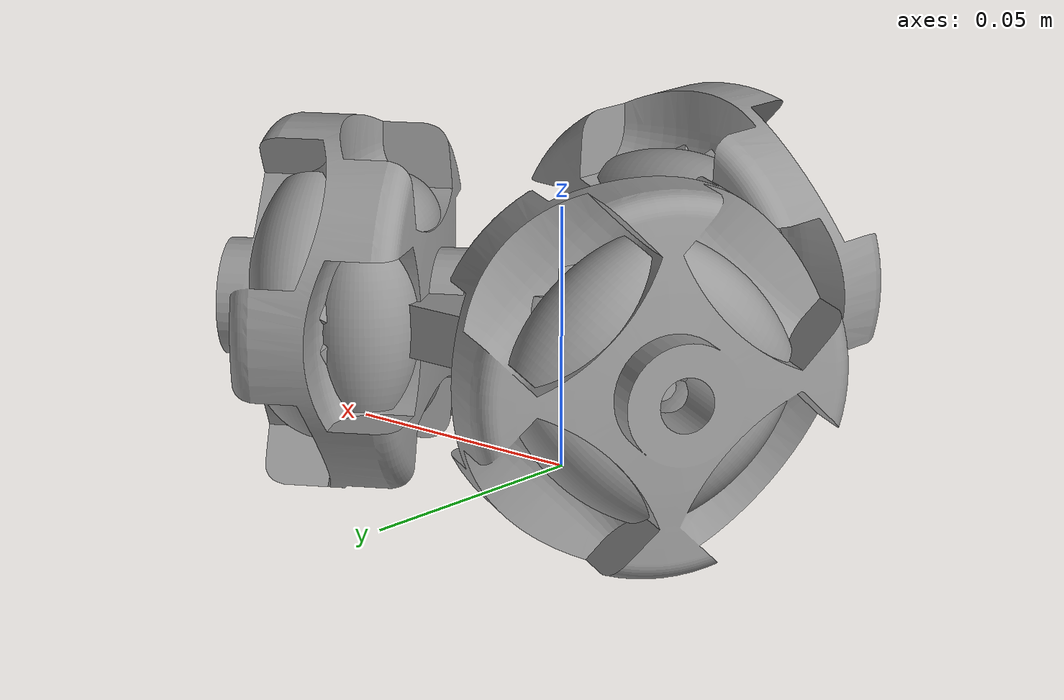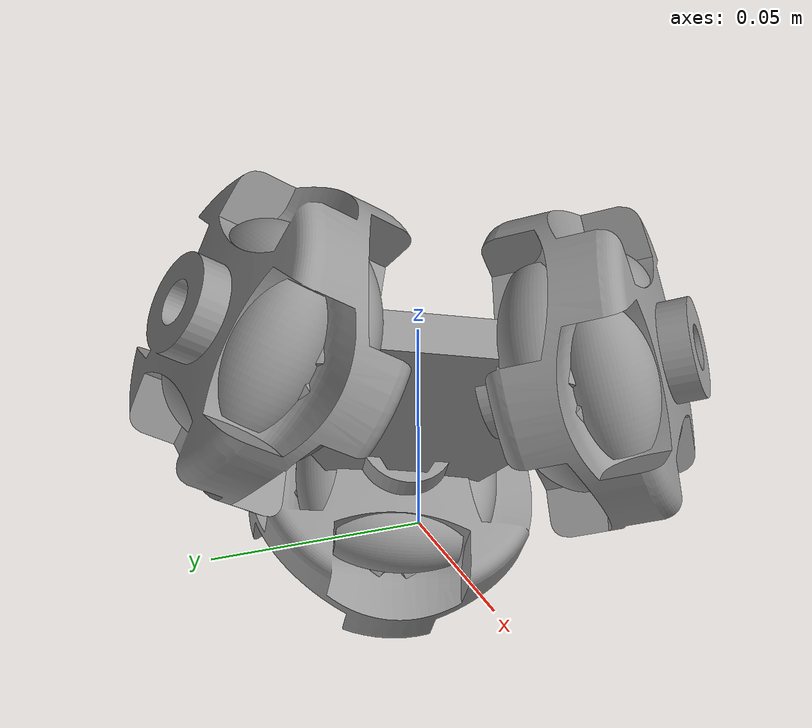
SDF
<?xml version="1.0" ?>
<!-- |    This document was autogenerated by xacro from /home/robostep/nav2-sample/src/OpenBase/openbase_gazebo_models/models/openbase_omni3/model.sdf.xacro | -->
<!-- |    EDITING THIS FILE BY HAND IS NOT RECOMMENDED                                 | -->
<sdf version="1.6">
  <model name="openbase_omni3_model">
    <pose>0 0 0.03 0 0 0</pose>
    <link name="body_link">
      <pose>0 0 0 0 0 0</pose>
      <inertial>
        <mass>0.07862944645</mass>
        <pose>0 0 0 0 0 0</pose>
        <inertia>
          <ixx>0.00002035985530754</ixx>
          <ixy>0</ixy>
          <ixz>0</ixz>
          <iyy>0.00002035985530754</iyy>
          <iyz>0</iyz>
          <izz>0.00003945961663220</izz>
        </inertia>
      </inertial>
      <visual name="visual">
        <pose>0 0 0 0 0 0</pose>
        <geometry>
          <mesh>
            <uri>model://openbase_omni3/body_reduced.stl</uri>
            <scale>1 1 1</scale>
          </mesh>
        </geometry>
        <material>
          <lighting>true</lighting>
          <script>
            <uri>file://media/materials/scripts/gazebo.material</uri>
            <name>Gazebo/Grey</name>
          </script>
          <ambient>1 1 1 1</ambient>
          <diffuse>0.7 0.7 0.7 1</diffuse>
          <specular>0.01 0.01 0.01 1</specular>
          <emissive>0 0 0 1</emissive>
          <shader type="vertex">
            <normal_map>__default__</normal_map>
          </shader>
        </material>
      </visual>
      <collision name="collision">
        <laser_retro>0</laser_retro>
        <max_contacts>10</max_contacts>
        <pose>0 0 0 0 0 0</pose>
        <geometry>
          <mesh>
            <uri>model://openbase_omni3/body_reduced.stl</uri>
            <scale>1 1 1</scale>
          </mesh>
        </geometry>
        <surface>
          <friction>
            <ode>
              <mu>1</mu>
              <mu2>1</mu2>
              <fdir1>0 0 0</fdir1>
              <slip1>0</slip1>
              <slip2>0</slip2>
            </ode>
            <torsional>
              <coefficient>1</coefficient>
              <patch_radius>0</patch_radius>
              <surface_radius>0</surface_radius>
              <use_patch_radius>true</use_patch_radius>
              <ode>
                <slip>0</slip>
              </ode>
            </torsional>
          </friction>
          <bounce>
            <restitution_coefficient>0</restitution_coefficient>
            <threshold>1e+06</threshold>
          </bounce>
          <contact>
            <collide_without_contact>false</collide_without_contact>
            <collide_bitmask>1</collide_bitmask>
            <ode>
              <soft_cfm>0</soft_cfm>
              <soft_erp>0.2</soft_erp>
              <kp>1e+13</kp>
              <kd>1</kd>
              <max_vel>0.01</max_vel>
              <min_depth>0</min_depth>
            </ode>
            <bullet>
              <split_impulse>true</split_impulse>
              <split_impulse_penetration_threshold>-0.01</split_impulse_penetration_threshold>
              <soft_cfm>0</soft_cfm>
              <soft_erp>0.2</soft_erp>
              <kp>1e+13</kp>
              <kd>1</kd>
            </bullet>
          </contact>
        </surface>
      </collision>
    </link>
    <include>
      <name>omni_wheel_left_model</name>
      <uri>model://omni_wheel</uri>
      <pose>-0.034641016151377546 0.019999999999999997 0 0 0 2.6179938779914944</pose>
    </include>
    <include>
      <name>omni_wheel_right_model</name>
      <uri>model://omni_wheel</uri>
      <pose>-7.347880794884118e-18 -0.04 0 0 0 4.71238898038469</pose>
    </include>
    <include>
      <name>omni_wheel_back_model</name>
      <uri>model://omni_wheel</uri>
      <pose>0.034641016151377546 0.019999999999999997 0 0 0 0.5235987755982988</pose>
    </include>
    <joint name="left_joint" type="revolute">
      <parent>body_link</parent>
      <child>omni_wheel_left_model::omni_wheel_rim_link</child>
      <pose>0 0 0 3.141592653589793 -1.5707963267948966 3.141592653589793</pose>
      <axis>
        <xyz>0 0 1</xyz>
        <use_parent_model_frame>0</use_parent_model_frame>
        <limit>
          <lower>-1.79769e+308</lower>
          <upper>1.79769e+308</upper>
          <effort>-1</effort>
          <velocity>-1</velocity>
        </limit>
        <dynamics>
          <spring_reference>0</spring_reference>
          <spring_stiffness>0</spring_stiffness>
          <damping>0</damping>
          <friction>0.0001</friction>
        </dynamics>
      </axis>
      <physics>
        <ode>
          <limit>
            <cfm>0</cfm>
            <erp>0.2</erp>
          </limit>
          <suspension>
            <cfm>0</cfm>
            <erp>0.2</erp>
          </suspension>
        </ode>
      </physics>
    </joint>
    <joint name="right_joint" type="revolute">
      <parent>body_link</parent>
      <child>omni_wheel_right_model::omni_wheel_rim_link</child>
      <pose>0 0 0 3.141592653589793 -1.5707963267948966 3.141592653589793</pose>
      <axis>
        <xyz>0 0 1</xyz>
        <use_parent_model_frame>0</use_parent_model_frame>
        <limit>
          <lower>-1.79769e+308</lower>
          <upper>1.79769e+308</upper>
          <effort>-1</effort>
          <velocity>-1</velocity>
        </limit>
        <dynamics>
          <spring_reference>0</spring_reference>
          <spring_stiffness>0</spring_stiffness>
          <damping>0</damping>
          <friction>0.0001</friction>
        </dynamics>
      </axis>
      <physics>
        <ode>
          <limit>
            <cfm>0</cfm>
            <erp>0.2</erp>
          </limit>
          <suspension>
            <cfm>0</cfm>
            <erp>0.2</erp>
          </suspension>
        </ode>
      </physics>
    </joint>
    <joint name="back_joint" type="revolute">
      <parent>body_link</parent>
      <child>omni_wheel_back_model::omni_wheel_rim_link</child>
      <pose>0 0 0 3.141592653589793 -1.5707963267948966 3.141592653589793</pose>
      <axis>
        <xyz>0 0 1</xyz>
        <use_parent_model_frame>0</use_parent_model_frame>
        <limit>
          <lower>-1.79769e+308</lower>
          <upper>1.79769e+308</upper>
          <effort>-1</effort>
          <velocity>-1</velocity>
        </limit>
        <dynamics>
          <spring_reference>0</spring_reference>
          <spring_stiffness>0</spring_stiffness>
          <damping>0</damping>
          <friction>0.0001</friction>
        </dynamics>
      </axis>
      <physics>
        <ode>
          <limit>
            <cfm>0</cfm>
            <erp>0.2</erp>
          </limit>
          <suspension>
            <cfm>0</cfm>
            <erp>0.2</erp>
          </suspension>
        </ode>
      </physics>
    </joint>
    <plugin filename="libgazebo_ros_omni_drive.so" name="omni_drive">
      <joint>left_joint</joint>
      <joint>right_joint</joint>
      <joint>back_joint</joint>
      <wheel_radius>0.1</wheel_radius>
    </plugin>
  </model>
</sdf>

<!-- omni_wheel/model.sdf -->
<!-- |    This document was autogenerated by xacro from /home/robostep/nav2-sample/src/OpenBase/openbase_gazebo_models/models/omni_wheel/model.sdf.xacro | -->
<!-- |    EDITING THIS FILE BY HAND IS NOT RECOMMENDED                                 | -->
<sdf version="1.6">
  <model name="omni_wheel_model">
    <link name="omni_wheel_rim_link">
      <pose>0 0 0 0 0 0</pose>
      <inertial>
        <mass>0.00835758</mass>
        <inertia>
          <ixx>9.40333e-07</ixx>
          <ixy>0</ixy>
          <ixz>0</ixz>
          <iyy>6.63684e-07</iyy>
          <iyz>0</iyz>
          <izz>6.63684e-07</izz>
        </inertia>
        <pose>0 -0.000343 0 0 0 0</pose>
      </inertial>
      <visual name="visual">
        <pose>0 0 0 0 0 0</pose>
        <geometry>
          <mesh>
            <uri>model://omni_wheel/rim.stl</uri>
            <scale>1 1 1</scale>
          </mesh>
        </geometry>
        <material>
          <lighting>true</lighting>
          <script>
            <uri>file://media/materials/scripts/gazebo.material</uri>
            <name>Gazebo/Grey</name>
          </script>
          <ambient>0.3 0.3 0.3 1</ambient>
          <diffuse>0.7 0.7 0.7 1</diffuse>
          <specular>0.01 0.01 0.01 1</specular>
          <emissive>0 0 0 1</emissive>
          <shader type="vertex">
            <normal_map>__default__</normal_map>
          </shader>
        </material>
      </visual>
      <collision name="collision">
        <laser_retro>0</laser_retro>
        <max_contacts>10</max_contacts>
        <pose>0 0 0 0 0 0</pose>
        <geometry>
          <mesh>
            <uri>model://omni_wheel/rim.stl</uri>
            <scale>1 1 1</scale>
          </mesh>
        </geometry>
        <surface>
          <friction>
            <ode>
              <mu>1</mu>
              <mu2>1</mu2>
              <fdir1>0 0 0</fdir1>
              <slip1>0</slip1>
              <slip2>0</slip2>
            </ode>
            <torsional>
              <coefficient>1</coefficient>
              <patch_radius>0</patch_radius>
              <surface_radius>0</surface_radius>
              <use_patch_radius>true</use_patch_radius>
              <ode>
                <slip>0</slip>
              </ode>
            </torsional>
          </friction>
          <bounce>
            <restitution_coefficient>0</restitution_coefficient>
            <threshold>1e+06</threshold>
          </bounce>
          <contact>
            <collide_without_contact>false</collide_without_contact>
            <collide_bitmask>1</collide_bitmask>
            <ode>
              <soft_cfm>0</soft_cfm>
              <soft_erp>0.2</soft_erp>
              <kp>1e+13</kp>
              <kd>1</kd>
              <max_vel>0.01</max_vel>
              <min_depth>0</min_depth>
            </ode>
            <bullet>
              <split_impulse>true</split_impulse>
              <split_impulse_penetration_threshold>-0.01</split_impulse_penetration_threshold>
              <soft_cfm>0</soft_cfm>
              <soft_erp>0.2</soft_erp>
              <kp>1e+13</kp>
              <kd>1</kd>
            </bullet>
          </contact>
        </surface>
      </collision>
    </link>
    <link name="omni_wheel_roller_e_link">
      <pose>-0.0055 0.01355 0 0 -0 0</pose>
      <inertial>
        <mass>0.00113845</mass>
        <pose>0 0 0 0 0 0</pose>
        <inertia>
          <ixx>2.53776e-08</ixx>
          <ixy>0</ixy>
          <ixz>0</ixz>
          <iyy>2.53776e-08</iyy>
          <iyz>0</iyz>
          <izz>1.47666e-08</izz>
        </inertia>
      </inertial>
      <visual name="visual">
        <pose>0 0 0 0 0 0</pose>
        <geometry>
          <mesh>
            <uri>model://omni_wheel/roller.stl</uri>
          </mesh>
        </geometry>
        <material>
          <lighting>true</lighting>
          <script>
            <uri>file://media/materials/scripts/gazebo.material</uri>
            <name>Gazebo/Grey</name>
          </script>
          <ambient>0.03 0.03 0.03 1</ambient>
          <diffuse>0.07 0.07 0.07 1</diffuse>
          <specular>0.001 0.001 0.001 1</specular>
          <emissive>0 0 0 1</emissive>
          <shader type="vertex">
            <normal_map>__default__</normal_map>
          </shader>
        </material>
      </visual>
      <collision name="collision">
        <laser_retro>0</laser_retro>
        <max_contacts>10</max_contacts>
        <pose>0 0 0 0 0 0</pose>
        <geometry>
          <mesh>
            <uri>model://omni_wheel/roller.stl</uri>
            <scale>1 1 1</scale>
          </mesh>
        </geometry>
        <surface>
          <friction>
            <ode>
              <mu>1</mu>
              <mu2>1</mu2>
              <fdir1>0 0 0</fdir1>
              <slip1>0</slip1>
              <slip2>0</slip2>
            </ode>
            <torsional>
              <coefficient>1</coefficient>
              <patch_radius>0</patch_radius>
              <surface_radius>0</surface_radius>
              <use_patch_radius>true</use_patch_radius>
              <ode>
                <slip>0</slip>
              </ode>
            </torsional>
          </friction>
          <bounce>
            <restitution_coefficient>0</restitution_coefficient>
            <threshold>1e+06</threshold>
          </bounce>
          <contact>
            <collide_without_contact>false</collide_without_contact>
            <collide_bitmask>1</collide_bitmask>
            <ode>
              <soft_cfm>0</soft_cfm>
              <soft_erp>0.2</soft_erp>
              <kp>1e+13</kp>
              <kd>1</kd>
              <max_vel>0.01</max_vel>
              <min_depth>0</min_depth>
            </ode>
            <bullet>
              <split_impulse>true</split_impulse>
              <split_impulse_penetration_threshold>-0.01</split_impulse_penetration_threshold>
              <soft_cfm>0</soft_cfm>
              <soft_erp>0.2</soft_erp>
              <kp>1e+13</kp>
              <kd>1</kd>
            </bullet>
          </contact>
        </surface>
      </collision>
    </link>
    <link name="omni_wheel_roller_ne_link">
      <pose>0.0055 0.009581 0.009581 0.7853981633974483 -0 0</pose>
      <inertial>
        <mass>0.00113845</mass>
        <pose>0 0 0 0 0 0</pose>
        <inertia>
          <ixx>2.53776e-08</ixx>
          <ixy>0</ixy>
          <ixz>0</ixz>
          <iyy>2.53776e-08</iyy>
          <iyz>0</iyz>
          <izz>1.47666e-08</izz>
        </inertia>
      </inertial>
      <visual name="visual">
        <pose>0 0 0 0 0 0</pose>
        <geometry>
          <mesh>
            <uri>model://omni_wheel/roller.stl</uri>
          </mesh>
        </geometry>
        <material>
          <lighting>true</lighting>
          <script>
            <uri>file://media/materials/scripts/gazebo.material</uri>
            <name>Gazebo/Grey</name>
          </script>
          <ambient>0.03 0.03 0.03 1</ambient>
          <diffuse>0.07 0.07 0.07 1</diffuse>
          <specular>0.001 0.001 0.001 1</specular>
          <emissive>0 0 0 1</emissive>
          <shader type="vertex">
            <normal_map>__default__</normal_map>
          </shader>
        </material>
      </visual>
      <collision name="collision">
        <laser_retro>0</laser_retro>
        <max_contacts>10</max_contacts>
        <pose>0 0 0 0 0 0</pose>
        <geometry>
          <mesh>
            <uri>model://omni_wheel/roller.stl</uri>
            <scale>1 1 1</scale>
          </mesh>
        </geometry>
        <surface>
          <friction>
            <ode>
              <mu>1</mu>
              <mu2>1</mu2>
              <fdir1>0 0 0</fdir1>
              <slip1>0</slip1>
              <slip2>0</slip2>
            </ode>
            <torsional>
              <coefficient>1</coefficient>
              <patch_radius>0</patch_radius>
              <surface_radius>0</surface_radius>
              <use_patch_radius>true</use_patch_radius>
              <ode>
                <slip>0</slip>
              </ode>
            </torsional>
          </friction>
          <bounce>
            <restitution_coefficient>0</restitution_coefficient>
            <threshold>1e+06</threshold>
          </bounce>
          <contact>
            <collide_without_contact>false</collide_without_contact>
            <collide_bitmask>1</collide_bitmask>
            <ode>
              <soft_cfm>0</soft_cfm>
              <soft_erp>0.2</soft_erp>
              <kp>1e+13</kp>
              <kd>1</kd>
              <max_vel>0.01</max_vel>
              <min_depth>0</min_depth>
            </ode>
            <bullet>
              <split_impulse>true</split_impulse>
              <split_impulse_penetration_threshold>-0.01</split_impulse_penetration_threshold>
              <soft_cfm>0</soft_cfm>
              <soft_erp>0.2</soft_erp>
              <kp>1e+13</kp>
              <kd>1</kd>
            </bullet>
          </contact>
        </surface>
      </collision>
    </link>
    <link name="omni_wheel_roller_n_link">
      <pose>-0.0055 0 0.01355 1.5707963267948966 -0 0</pose>
      <inertial>
        <mass>0.00113845</mass>
        <pose>0 0 0 0 0 0</pose>
        <inertia>
          <ixx>2.53776e-08</ixx>
          <ixy>0</ixy>
          <ixz>0</ixz>
          <iyy>2.53776e-08</iyy>
          <iyz>0</iyz>
          <izz>1.47666e-08</izz>
        </inertia>
      </inertial>
      <visual name="visual">
        <pose>0 0 0 0 0 0</pose>
        <geometry>
          <mesh>
            <uri>model://omni_wheel/roller.stl</uri>
          </mesh>
        </geometry>
        <material>
          <lighting>true</lighting>
          <script>
            <uri>file://media/materials/scripts/gazebo.material</uri>
            <name>Gazebo/Grey</name>
          </script>
          <ambient>0.03 0.03 0.03 1</ambient>
          <diffuse>0.07 0.07 0.07 1</diffuse>
          <specular>0.001 0.001 0.001 1</specular>
          <emissive>0 0 0 1</emissive>
          <shader type="vertex">
            <normal_map>__default__</normal_map>
          </shader>
        </material>
      </visual>
      <collision name="collision">
        <laser_retro>0</laser_retro>
        <max_contacts>10</max_contacts>
        <pose>0 0 0 0 0 0</pose>
        <geometry>
          <mesh>
            <uri>model://omni_wheel/roller.stl</uri>
            <scale>1 1 1</scale>
          </mesh>
        </geometry>
        <surface>
          <friction>
            <ode>
              <mu>1</mu>
              <mu2>1</mu2>
              <fdir1>0 0 0</fdir1>
              <slip1>0</slip1>
              <slip2>0</slip2>
            </ode>
            <torsional>
              <coefficient>1</coefficient>
              <patch_radius>0</patch_radius>
              <surface_radius>0</surface_radius>
              <use_patch_radius>true</use_patch_radius>
              <ode>
                <slip>0</slip>
              </ode>
            </torsional>
          </friction>
          <bounce>
            <restitution_coefficient>0</restitution_coefficient>
            <threshold>1e+06</threshold>
          </bounce>
          <contact>
            <collide_without_contact>false</collide_without_contact>
            <collide_bitmask>1</collide_bitmask>
            <ode>
              <soft_cfm>0</soft_cfm>
              <soft_erp>0.2</soft_erp>
              <kp>1e+13</kp>
              <kd>1</kd>
              <max_vel>0.01</max_vel>
              <min_depth>0</min_depth>
            </ode>
            <bullet>
              <split_impulse>true</split_impulse>
              <split_impulse_penetration_threshold>-0.01</split_impulse_penetration_threshold>
              <soft_cfm>0</soft_cfm>
              <soft_erp>0.2</soft_erp>
              <kp>1e+13</kp>
              <kd>1</kd>
            </bullet>
          </contact>
        </surface>
      </collision>
    </link>
    <link name="omni_wheel_roller_nw_link">
      <pose>0.0055 -0.009581 0.009581 2.356194490192345 -0 0</pose>
      <inertial>
        <mass>0.00113845</mass>
        <pose>0 0 0 0 0 0</pose>
        <inertia>
          <ixx>2.53776e-08</ixx>
          <ixy>0</ixy>
          <ixz>0</ixz>
          <iyy>2.53776e-08</iyy>
          <iyz>0</iyz>
          <izz>1.47666e-08</izz>
        </inertia>
      </inertial>
      <visual name="visual">
        <pose>0 0 0 0 0 0</pose>
        <geometry>
          <mesh>
            <uri>model://omni_wheel/roller.stl</uri>
          </mesh>
        </geometry>
        <material>
          <lighting>true</lighting>
          <script>
            <uri>file://media/materials/scripts/gazebo.material</uri>
            <name>Gazebo/Grey</name>
          </script>
          <ambient>0.03 0.03 0.03 1</ambient>
          <diffuse>0.07 0.07 0.07 1</diffuse>
          <specular>0.001 0.001 0.001 1</specular>
          <emissive>0 0 0 1</emissive>
          <shader type="vertex">
            <normal_map>__default__</normal_map>
          </shader>
        </material>
      </visual>
      <collision name="collision">
        <laser_retro>0</laser_retro>
        <max_contacts>10</max_contacts>
        <pose>0 0 0 0 0 0</pose>
        <geometry>
          <mesh>
            <uri>model://omni_wheel/roller.stl</uri>
            <scale>1 1 1</scale>
          </mesh>
        </geometry>
        <surface>
          <friction>
            <ode>
              <mu>1</mu>
              <mu2>1</mu2>
              <fdir1>0 0 0</fdir1>
              <slip1>0</slip1>
              <slip2>0</slip2>
            </ode>
            <torsional>
              <coefficient>1</coefficient>
              <patch_radius>0</patch_radius>
              <surface_radius>0</surface_radius>
              <use_patch_radius>true</use_patch_radius>
              <ode>
                <slip>0</slip>
              </ode>
            </torsional>
          </friction>
          <bounce>
            <restitution_coefficient>0</restitution_coefficient>
            <threshold>1e+06</threshold>
          </bounce>
          <contact>
            <collide_without_contact>false</collide_without_contact>
            <collide_bitmask>1</collide_bitmask>
            <ode>
              <soft_cfm>0</soft_cfm>
              <soft_erp>0.2</soft_erp>
              <kp>1e+13</kp>
              <kd>1</kd>
              <max_vel>0.01</max_vel>
              <min_depth>0</min_depth>
            </ode>
            <bullet>
              <split_impulse>true</split_impulse>
              <split_impulse_penetration_threshold>-0.01</split_impulse_penetration_threshold>
              <soft_cfm>0</soft_cfm>
              <soft_erp>0.2</soft_erp>
              <kp>1e+13</kp>
              <kd>1</kd>
            </bullet>
          </contact>
        </surface>
      </collision>
    </link>
    <link name="omni_wheel_roller_w_link">
      <pose>-0.0055 -0.01355 0 -3.141592653589793 0 0</pose>
      <inertial>
        <mass>0.00113845</mass>
        <pose>0 0 0 0 0 0</pose>
        <inertia>
          <ixx>2.53776e-08</ixx>
          <ixy>0</ixy>
          <ixz>0</ixz>
          <iyy>2.53776e-08</iyy>
          <iyz>0</iyz>
          <izz>1.47666e-08</izz>
        </inertia>
      </inertial>
      <visual name="visual">
        <pose>0 0 0 0 0 0</pose>
        <geometry>
          <mesh>
            <uri>model://omni_wheel/roller.stl</uri>
          </mesh>
        </geometry>
        <material>
          <lighting>true</lighting>
          <script>
            <uri>file://media/materials/scripts/gazebo.material</uri>
            <name>Gazebo/Grey</name>
          </script>
          <ambient>0.03 0.03 0.03 1</ambient>
          <diffuse>0.07 0.07 0.07 1</diffuse>
          <specular>0.001 0.001 0.001 1</specular>
          <emissive>0 0 0 1</emissive>
          <shader type="vertex">
            <normal_map>__default__</normal_map>
          </shader>
        </material>
      </visual>
      <collision name="collision">
        <laser_retro>0</laser_retro>
        <max_contacts>10</max_contacts>
        <pose>0 0 0 0 0 0</pose>
        <geometry>
          <mesh>
            <uri>model://omni_wheel/roller.stl</uri>
            <scale>1 1 1</scale>
          </mesh>
        </geometry>
        <surface>
          <friction>
            <ode>
              <mu>1</mu>
              <mu2>1</mu2>
              <fdir1>0 0 0</fdir1>
              <slip1>0</slip1>
              <slip2>0</slip2>
            </ode>
            <torsional>
              <coefficient>1</coefficient>
              <patch_radius>0</patch_radius>
              <surface_radius>0</surface_radius>
              <use_patch_radius>true</use_patch_radius>
              <ode>
                <slip>0</slip>
              </ode>
            </torsional>
          </friction>
          <bounce>
            <restitution_coefficient>0</restitution_coefficient>
            <threshold>1e+06</threshold>
          </bounce>
          <contact>
            <collide_without_contact>false</collide_without_contact>
            <collide_bitmask>1</collide_bitmask>
            <ode>
              <soft_cfm>0</soft_cfm>
              <soft_erp>0.2</soft_erp>
              <kp>1e+13</kp>
              <kd>1</kd>
              <max_vel>0.01</max_vel>
              <min_depth>0</min_depth>
            </ode>
            <bullet>
              <split_impulse>true</split_impulse>
              <split_impulse_penetration_threshold>-0.01</split_impulse_penetration_threshold>
              <soft_cfm>0</soft_cfm>
              <soft_erp>0.2</soft_erp>
              <kp>1e+13</kp>
              <kd>1</kd>
            </bullet>
          </contact>
        </surface>
      </collision>
    </link>
    <link name="omni_wheel_roller_sw_link">
      <pose>0.0055 -0.009581 -0.009581 -2.356194490192345 0 0</pose>
      <inertial>
        <mass>0.00113845</mass>
        <pose>0 0 0 0 0 0</pose>
        <inertia>
          <ixx>2.53776e-08</ixx>
          <ixy>0</ixy>
          <ixz>0</ixz>
          <iyy>2.53776e-08</iyy>
          <iyz>0</iyz>
          <izz>1.47666e-08</izz>
        </inertia>
      </inertial>
      <visual name="visual">
        <pose>0 0 0 0 0 0</pose>
        <geometry>
          <mesh>
            <uri>model://omni_wheel/roller.stl</uri>
          </mesh>
        </geometry>
        <material>
          <lighting>true</lighting>
          <script>
            <uri>file://media/materials/scripts/gazebo.material</uri>
            <name>Gazebo/Grey</name>
          </script>
          <ambient>0.03 0.03 0.03 1</ambient>
          <diffuse>0.07 0.07 0.07 1</diffuse>
          <specular>0.001 0.001 0.001 1</specular>
          <emissive>0 0 0 1</emissive>
          <shader type="vertex">
            <normal_map>__default__</normal_map>
          </shader>
        </material>
      </visual>
      <collision name="collision">
        <laser_retro>0</laser_retro>
        <max_contacts>10</max_contacts>
        <pose>0 0 0 0 0 0</pose>
        <geometry>
          <mesh>
            <uri>model://omni_wheel/roller.stl</uri>
            <scale>1 1 1</scale>
          </mesh>
        </geometry>
        <surface>
          <friction>
            <ode>
              <mu>1</mu>
              <mu2>1</mu2>
              <fdir1>0 0 0</fdir1>
              <slip1>0</slip1>
              <slip2>0</slip2>
            </ode>
            <torsional>
              <coefficient>1</coefficient>
              <patch_radius>0</patch_radius>
              <surface_radius>0</surface_radius>
              <use_patch_radius>true</use_patch_radius>
              <ode>
                <slip>0</slip>
              </ode>
            </torsional>
          </friction>
          <bounce>
            <restitution_coefficient>0</restitution_coefficient>
            <threshold>1e+06</threshold>
          </bounce>
          <contact>
            <collide_without_contact>false</collide_without_contact>
            <collide_bitmask>1</collide_bitmask>
            <ode>
              <soft_cfm>0</soft_cfm>
              <soft_erp>0.2</soft_erp>
              <kp>1e+13</kp>
              <kd>1</kd>
              <max_vel>0.01</max_vel>
              <min_depth>0</min_depth>
            </ode>
            <bullet>
              <split_impulse>true</split_impulse>
              <split_impulse_penetration_threshold>-0.01</split_impulse_penetration_threshold>
              <soft_cfm>0</soft_cfm>
              <soft_erp>0.2</soft_erp>
              <kp>1e+13</kp>
              <kd>1</kd>
            </bullet>
          </contact>
        </surface>
      </collision>
    </link>
    <link name="omni_wheel_roller_s_link">
      <pose>-0.0055 0 -0.01355 -1.5707963267948966 0 0</pose>
      <inertial>
        <mass>0.00113845</mass>
        <pose>0 0 0 0 0 0</pose>
        <inertia>
          <ixx>2.53776e-08</ixx>
          <ixy>0</ixy>
          <ixz>0</ixz>
          <iyy>2.53776e-08</iyy>
          <iyz>0</iyz>
          <izz>1.47666e-08</izz>
        </inertia>
      </inertial>
      <visual name="visual">
        <pose>0 0 0 0 0 0</pose>
        <geometry>
          <mesh>
            <uri>model://omni_wheel/roller.stl</uri>
          </mesh>
        </geometry>
        <material>
          <lighting>true</lighting>
          <script>
            <uri>file://media/materials/scripts/gazebo.material</uri>
            <name>Gazebo/Grey</name>
          </script>
          <ambient>0.03 0.03 0.03 1</ambient>
          <diffuse>0.07 0.07 0.07 1</diffuse>
          <specular>0.001 0.001 0.001 1</specular>
          <emissive>0 0 0 1</emissive>
          <shader type="vertex">
            <normal_map>__default__</normal_map>
          </shader>
        </material>
      </visual>
      <collision name="collision">
        <laser_retro>0</laser_retro>
        <max_contacts>10</max_contacts>
        <pose>0 0 0 0 0 0</pose>
        <geometry>
          <mesh>
            <uri>model://omni_wheel/roller.stl</uri>
            <scale>1 1 1</scale>
          </mesh>
        </geometry>
        <surface>
          <friction>
            <ode>
              <mu>1</mu>
              <mu2>1</mu2>
              <fdir1>0 0 0</fdir1>
              <slip1>0</slip1>
              <slip2>0</slip2>
            </ode>
            <torsional>
              <coefficient>1</coefficient>
              <patch_radius>0</patch_radius>
              <surface_radius>0</surface_radius>
              <use_patch_radius>true</use_patch_radius>
              <ode>
                <slip>0</slip>
              </ode>
            </torsional>
          </friction>
          <bounce>
            <restitution_coefficient>0</restitution_coefficient>
            <threshold>1e+06</threshold>
          </bounce>
          <contact>
            <collide_without_contact>false</collide_without_contact>
            <collide_bitmask>1</collide_bitmask>
            <ode>
              <soft_cfm>0</soft_cfm>
              <soft_erp>0.2</soft_erp>
              <kp>1e+13</kp>
              <kd>1</kd>
              <max_vel>0.01</max_vel>
              <min_depth>0</min_depth>
            </ode>
            <bullet>
              <split_impulse>true</split_impulse>
              <split_impulse_penetration_threshold>-0.01</split_impulse_penetration_threshold>
              <soft_cfm>0</soft_cfm>
              <soft_erp>0.2</soft_erp>
              <kp>1e+13</kp>
              <kd>1</kd>
            </bullet>
          </contact>
        </surface>
      </collision>
    </link>
    <link name="omni_wheel_roller_se_link">
      <pose>0.0055 0.009581 -0.009581 -0.7853981633974483 0 0</pose>
      <inertial>
        <mass>0.00113845</mass>
        <pose>0 0 0 0 0 0</pose>
        <inertia>
          <ixx>2.53776e-08</ixx>
          <ixy>0</ixy>
          <ixz>0</ixz>
          <iyy>2.53776e-08</iyy>
          <iyz>0</iyz>
          <izz>1.47666e-08</izz>
        </inertia>
      </inertial>
      <visual name="visual">
        <pose>0 0 0 0 0 0</pose>
        <geometry>
          <mesh>
            <uri>model://omni_wheel/roller.stl</uri>
          </mesh>
        </geometry>
        <material>
          <lighting>true</lighting>
          <script>
            <uri>file://media/materials/scripts/gazebo.material</uri>
            <name>Gazebo/Grey</name>
          </script>
          <ambient>0.03 0.03 0.03 1</ambient>
          <diffuse>0.07 0.07 0.07 1</diffuse>
          <specular>0.001 0.001 0.001 1</specular>
          <emissive>0 0 0 1</emissive>
          <shader type="vertex">
            <normal_map>__default__</normal_map>
          </shader>
        </material>
      </visual>
      <collision name="collision">
        <laser_retro>0</laser_retro>
        <max_contacts>10</max_contacts>
        <pose>0 0 0 0 0 0</pose>
        <geometry>
          <mesh>
            <uri>model://omni_wheel/roller.stl</uri>
            <scale>1 1 1</scale>
          </mesh>
        </geometry>
        <surface>
          <friction>
            <ode>
              <mu>1</mu>
              <mu2>1</mu2>
              <fdir1>0 0 0</fdir1>
              <slip1>0</slip1>
              <slip2>0</slip2>
            </ode>
            <torsional>
              <coefficient>1</coefficient>
              <patch_radius>0</patch_radius>
              <surface_radius>0</surface_radius>
              <use_patch_radius>true</use_patch_radius>
              <ode>
                <slip>0</slip>
              </ode>
            </torsional>
          </friction>
          <bounce>
            <restitution_coefficient>0</restitution_coefficient>
            <threshold>1e+06</threshold>
          </bounce>
          <contact>
            <collide_without_contact>false</collide_without_contact>
            <collide_bitmask>1</collide_bitmask>
            <ode>
              <soft_cfm>0</soft_cfm>
              <soft_erp>0.2</soft_erp>
              <kp>1e+13</kp>
              <kd>1</kd>
              <max_vel>0.01</max_vel>
              <min_depth>0</min_depth>
            </ode>
            <bullet>
              <split_impulse>true</split_impulse>
              <split_impulse_penetration_threshold>-0.01</split_impulse_penetration_threshold>
              <soft_cfm>0</soft_cfm>
              <soft_erp>0.2</soft_erp>
              <kp>1e+13</kp>
              <kd>1</kd>
            </bullet>
          </contact>
        </surface>
      </collision>
    </link>
    <joint name="omni_wheel_s_joint" type="revolute">
      <parent>omni_wheel_rim_link</parent>
      <child>omni_wheel_roller_s_link</child>
      <pose>0 0 0 0 0 1.5707963267948966</pose>
      <axis>
        <xyz>0 0 1</xyz>
        <limit>
          <lower>-1.79769e+308</lower>
          <upper>1.79769e+308</upper>
          <effort>-1</effort>
          <velocity>-1</velocity>
        </limit>
        <dynamics>
          <spring_reference>0</spring_reference>
          <spring_stiffness>0</spring_stiffness>
          <damping>0</damping>
          <friction>0.001</friction>
        </dynamics>
      </axis>
      <physics>
        <ode>
          <limit>
            <cfm>0</cfm>
            <erp>0.2</erp>
          </limit>
          <suspension>
            <cfm>0</cfm>
            <erp>0.2</erp>
          </suspension>
        </ode>
      </physics>
    </joint>
    <joint name="omni_wheel_se_joint" type="revolute">
      <parent>omni_wheel_rim_link</parent>
      <child>omni_wheel_roller_se_link</child>
      <pose>0 0 0 0 0 1.5707963267948966</pose>
      <axis>
        <xyz>0 0 1</xyz>
        <limit>
          <lower>-1.79769e+308</lower>
          <upper>1.79769e+308</upper>
          <effort>-1</effort>
          <velocity>-1</velocity>
        </limit>
        <dynamics>
          <spring_reference>0</spring_reference>
          <spring_stiffness>0</spring_stiffness>
          <damping>0</damping>
          <friction>0.001</friction>
        </dynamics>
      </axis>
      <physics>
        <ode>
          <limit>
            <cfm>0</cfm>
            <erp>0.2</erp>
          </limit>
          <suspension>
            <cfm>0</cfm>
            <erp>0.2</erp>
          </suspension>
        </ode>
      </physics>
    </joint>
    <joint name="omni_wheel_e_joint" type="revolute">
      <parent>omni_wheel_rim_link</parent>
      <child>omni_wheel_roller_e_link</child>
      <pose>0 0 0 0 0 1.5707963267948966</pose>
      <axis>
        <xyz>0 0 1</xyz>
        <limit>
          <lower>-1.79769e+308</lower>
          <upper>1.79769e+308</upper>
          <effort>-1</effort>
          <velocity>-1</velocity>
        </limit>
        <dynamics>
          <spring_reference>0</spring_reference>
          <spring_stiffness>0</spring_stiffness>
          <damping>0</damping>
          <friction>0.001</friction>
        </dynamics>
      </axis>
      <physics>
        <ode>
          <limit>
            <cfm>0</cfm>
            <erp>0.2</erp>
          </limit>
          <suspension>
            <cfm>0</cfm>
            <erp>0.2</erp>
          </suspension>
        </ode>
      </physics>
    </joint>
    <joint name="omni_wheel_ne_joint" type="revolute">
      <parent>omni_wheel_rim_link</parent>
      <child>omni_wheel_roller_ne_link</child>
      <pose>0 0 0 0 0 1.5707963267948966</pose>
      <axis>
        <xyz>0 0 1</xyz>
        <limit>
          <lower>-1.79769e+308</lower>
          <upper>1.79769e+308</upper>
          <effort>-1</effort>
          <velocity>-1</velocity>
        </limit>
        <dynamics>
          <spring_reference>0</spring_reference>
          <spring_stiffness>0</spring_stiffness>
          <damping>0</damping>
          <friction>0.001</friction>
        </dynamics>
      </axis>
      <physics>
        <ode>
          <limit>
            <cfm>0</cfm>
            <erp>0.2</erp>
          </limit>
          <suspension>
            <cfm>0</cfm>
            <erp>0.2</erp>
          </suspension>
        </ode>
      </physics>
    </joint>
    <joint name="omni_wheel_n_joint" type="revolute">
      <parent>omni_wheel_rim_link</parent>
      <child>omni_wheel_roller_n_link</child>
      <pose>0 0 0 0 0 1.5707963267948966</pose>
      <axis>
        <xyz>0 0 1</xyz>
        <limit>
          <lower>-1.79769e+308</lower>
          <upper>1.79769e+308</upper>
          <effort>-1</effort>
          <velocity>-1</velocity>
        </limit>
        <dynamics>
          <spring_reference>0</spring_reference>
          <spring_stiffness>0</spring_stiffness>
          <damping>0</damping>
          <friction>0.001</friction>
        </dynamics>
      </axis>
      <physics>
        <ode>
          <limit>
            <cfm>0</cfm>
            <erp>0.2</erp>
          </limit>
          <suspension>
            <cfm>0</cfm>
            <erp>0.2</erp>
          </suspension>
        </ode>
      </physics>
    </joint>
    <joint name="omni_wheel_nw_joint" type="revolute">
      <parent>omni_wheel_rim_link</parent>
      <child>omni_wheel_roller_nw_link</child>
      <pose>0 0 0 0 0 1.5707963267948966</pose>
      <axis>
        <xyz>0 0 1</xyz>
        <limit>
          <lower>-1.79769e+308</lower>
          <upper>1.79769e+308</upper>
          <effort>-1</effort>
          <velocity>-1</velocity>
        </limit>
        <dynamics>
          <spring_reference>0</spring_reference>
          <spring_stiffness>0</spring_stiffness>
          <damping>0</damping>
          <friction>0.001</friction>
        </dynamics>
      </axis>
      <physics>
        <ode>
          <limit>
            <cfm>0</cfm>
            <erp>0.2</erp>
          </limit>
          <suspension>
            <cfm>0</cfm>
            <erp>0.2</erp>
          </suspension>
        </ode>
      </physics>
    </joint>
    <joint name="omni_wheel_w_joint" type="revolute">
      <parent>omni_wheel_rim_link</parent>
      <child>omni_wheel_roller_w_link</child>
      <pose>0 0 0 0 0 1.5707963267948966</pose>
      <axis>
        <xyz>0 0 1</xyz>
        <limit>
          <lower>-1.79769e+308</lower>
          <upper>1.79769e+308</upper>
          <effort>-1</effort>
          <velocity>-1</velocity>
        </limit>
        <dynamics>
          <spring_reference>0</spring_reference>
          <spring_stiffness>0</spring_stiffness>
          <damping>0</damping>
          <friction>0.001</friction>
        </dynamics>
      </axis>
      <physics>
        <ode>
          <limit>
            <cfm>0</cfm>
            <erp>0.2</erp>
          </limit>
          <suspension>
            <cfm>0</cfm>
            <erp>0.2</erp>
          </suspension>
        </ode>
      </physics>
    </joint>
    <joint name="omni_wheel_sw_joint" type="revolute">
      <parent>omni_wheel_rim_link</parent>
      <child>omni_wheel_roller_sw_link</child>
      <pose>0 0 0 0 0 1.5707963267948966</pose>
      <axis>
        <xyz>0 0 1</xyz>
        <limit>
          <lower>-1.79769e+308</lower>
          <upper>1.79769e+308</upper>
          <effort>-1</effort>
          <velocity>-1</velocity>
        </limit>
        <dynamics>
          <spring_reference>0</spring_reference>
          <spring_stiffness>0</spring_stiffness>
          <damping>0</damping>
          <friction>0.001</friction>
        </dynamics>
      </axis>
      <physics>
        <ode>
          <limit>
            <cfm>0</cfm>
            <erp>0.2</erp>
          </limit>
          <suspension>
            <cfm>0</cfm>
            <erp>0.2</erp>
          </suspension>
        </ode>
      </physics>
    </joint>
  </model>
</sdf>
